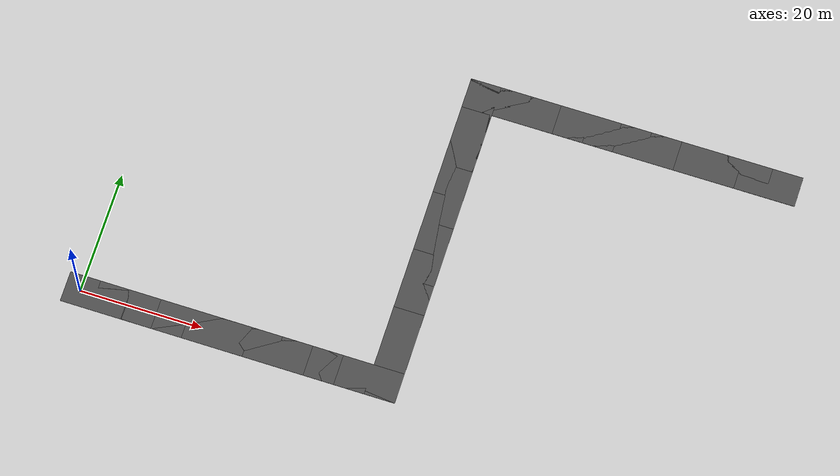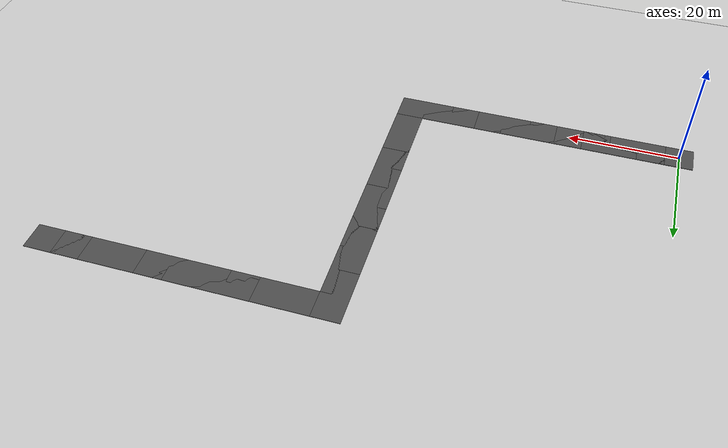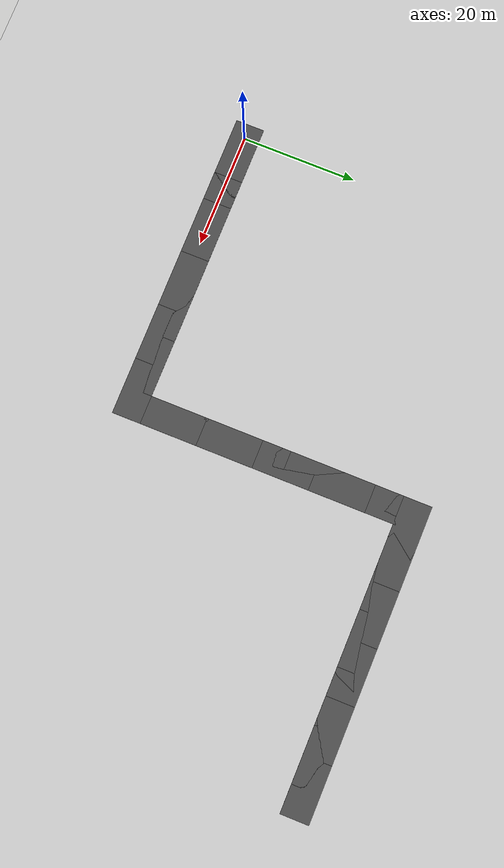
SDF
<?xml version="1.0" ?>
<sdf version="1.6">
  <world name="road_crank_w5">
    <include>
      <uri>model://ground_plane</uri>
    </include>
    <include>
      <uri>model://sun</uri>
    </include>

    <!-- クランク 50m × 5m -->
    <include>
      <uri>model://road_crank_50m_w5</uri>
    </include>

  </world>
</sdf>

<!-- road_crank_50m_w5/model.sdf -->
<sdf version="1.6">
  <model name="road_crank_50m_w5">
    <static>true</static>

    <link name="panel_000">
      <pose>2.500 0.000 0.050 0 0 0.000000</pose>
      <collision name="panel_000_collision">
        <geometry>
          <box>
            <size>10.000 5.000 0.100</size>
          </box>
        </geometry>
        <surface>
          <friction>
            <ode>
              <mu>1.0</mu>
              <mu2>1.0</mu2>
            </ode>
          </friction>
        </surface>
      </collision>
      <visual name="panel_000_visual">
        <geometry>
          <box>
            <size>10.000 5.000 0.100</size>
          </box>
        </geometry>
        <material>
          <ambient>0.2 0.2 0.2 1</ambient>
          <diffuse>0.3 0.3 0.3 1</diffuse>
        </material>
      </visual>
    </link>

    <link name="panel_001">
      <pose>7.500 0.000 0.050 0 0 0.000000</pose>
      <collision name="panel_001_collision">
        <geometry>
          <box>
            <size>10.000 5.000 0.100</size>
          </box>
        </geometry>
        <surface>
          <friction>
            <ode>
              <mu>1.0</mu>
              <mu2>1.0</mu2>
            </ode>
          </friction>
        </surface>
      </collision>
      <visual name="panel_001_visual">
        <geometry>
          <box>
            <size>10.000 5.000 0.100</size>
          </box>
        </geometry>
        <material>
          <ambient>0.2 0.2 0.2 1</ambient>
          <diffuse>0.3 0.3 0.3 1</diffuse>
        </material>
      </visual>
    </link>

    <link name="panel_002">
      <pose>12.500 0.000 0.050 0 0 0.000000</pose>
      <collision name="panel_002_collision">
        <geometry>
          <box>
            <size>10.000 5.000 0.100</size>
          </box>
        </geometry>
        <surface>
          <friction>
            <ode>
              <mu>1.0</mu>
              <mu2>1.0</mu2>
            </ode>
          </friction>
        </surface>
      </collision>
      <visual name="panel_002_visual">
        <geometry>
          <box>
            <size>10.000 5.000 0.100</size>
          </box>
        </geometry>
        <material>
          <ambient>0.2 0.2 0.2 1</ambient>
          <diffuse>0.3 0.3 0.3 1</diffuse>
        </material>
      </visual>
    </link>

    <link name="panel_003">
      <pose>17.500 0.000 0.050 0 0 0.000000</pose>
      <collision name="panel_003_collision">
        <geometry>
          <box>
            <size>10.000 5.000 0.100</size>
          </box>
        </geometry>
        <surface>
          <friction>
            <ode>
              <mu>1.0</mu>
              <mu2>1.0</mu2>
            </ode>
          </friction>
        </surface>
      </collision>
      <visual name="panel_003_visual">
        <geometry>
          <box>
            <size>10.000 5.000 0.100</size>
          </box>
        </geometry>
        <material>
          <ambient>0.2 0.2 0.2 1</ambient>
          <diffuse>0.3 0.3 0.3 1</diffuse>
        </material>
      </visual>
    </link>

    <link name="panel_004">
      <pose>22.500 0.000 0.050 0 0 0.000000</pose>
      <collision name="panel_004_collision">
        <geometry>
          <box>
            <size>10.000 5.000 0.100</size>
          </box>
        </geometry>
        <surface>
          <friction>
            <ode>
              <mu>1.0</mu>
              <mu2>1.0</mu2>
            </ode>
          </friction>
        </surface>
      </collision>
      <visual name="panel_004_visual">
        <geometry>
          <box>
            <size>10.000 5.000 0.100</size>
          </box>
        </geometry>
        <material>
          <ambient>0.2 0.2 0.2 1</ambient>
          <diffuse>0.3 0.3 0.3 1</diffuse>
        </material>
      </visual>
    </link>

    <link name="panel_005">
      <pose>27.500 0.000 0.050 0 0 0.000000</pose>
      <collision name="panel_005_collision">
        <geometry>
          <box>
            <size>10.000 5.000 0.100</size>
          </box>
        </geometry>
        <surface>
          <friction>
            <ode>
              <mu>1.0</mu>
              <mu2>1.0</mu2>
            </ode>
          </friction>
        </surface>
      </collision>
      <visual name="panel_005_visual">
        <geometry>
          <box>
            <size>10.000 5.000 0.100</size>
          </box>
        </geometry>
        <material>
          <ambient>0.2 0.2 0.2 1</ambient>
          <diffuse>0.3 0.3 0.3 1</diffuse>
        </material>
      </visual>
    </link>

    <link name="panel_006">
      <pose>32.500 0.000 0.050 0 0 0.000000</pose>
      <collision name="panel_006_collision">
        <geometry>
          <box>
            <size>10.000 5.000 0.100</size>
          </box>
        </geometry>
        <surface>
          <friction>
            <ode>
              <mu>1.0</mu>
              <mu2>1.0</mu2>
            </ode>
          </friction>
        </surface>
      </collision>
      <visual name="panel_006_visual">
        <geometry>
          <box>
            <size>10.000 5.000 0.100</size>
          </box>
        </geometry>
        <material>
          <ambient>0.2 0.2 0.2 1</ambient>
          <diffuse>0.3 0.3 0.3 1</diffuse>
        </material>
      </visual>
    </link>

    <link name="panel_007">
      <pose>37.500 0.000 0.050 0 0 0.000000</pose>
      <collision name="panel_007_collision">
        <geometry>
          <box>
            <size>10.000 5.000 0.100</size>
          </box>
        </geometry>
        <surface>
          <friction>
            <ode>
              <mu>1.0</mu>
              <mu2>1.0</mu2>
            </ode>
          </friction>
        </surface>
      </collision>
      <visual name="panel_007_visual">
        <geometry>
          <box>
            <size>10.000 5.000 0.100</size>
          </box>
        </geometry>
        <material>
          <ambient>0.2 0.2 0.2 1</ambient>
          <diffuse>0.3 0.3 0.3 1</diffuse>
        </material>
      </visual>
    </link>

    <link name="panel_008">
      <pose>42.500 0.000 0.050 0 0 0.000000</pose>
      <collision name="panel_008_collision">
        <geometry>
          <box>
            <size>10.000 5.000 0.100</size>
          </box>
        </geometry>
        <surface>
          <friction>
            <ode>
              <mu>1.0</mu>
              <mu2>1.0</mu2>
            </ode>
          </friction>
        </surface>
      </collision>
      <visual name="panel_008_visual">
        <geometry>
          <box>
            <size>10.000 5.000 0.100</size>
          </box>
        </geometry>
        <material>
          <ambient>0.2 0.2 0.2 1</ambient>
          <diffuse>0.3 0.3 0.3 1</diffuse>
        </material>
      </visual>
    </link>

    <link name="panel_009">
      <pose>47.500 0.000 0.050 0 0 0.000000</pose>
      <collision name="panel_009_collision">
        <geometry>
          <box>
            <size>10.000 5.000 0.100</size>
          </box>
        </geometry>
        <surface>
          <friction>
            <ode>
              <mu>1.0</mu>
              <mu2>1.0</mu2>
            </ode>
          </friction>
        </surface>
      </collision>
      <visual name="panel_009_visual">
        <geometry>
          <box>
            <size>10.000 5.000 0.100</size>
          </box>
        </geometry>
        <material>
          <ambient>0.2 0.2 0.2 1</ambient>
          <diffuse>0.3 0.3 0.3 1</diffuse>
        </material>
      </visual>
    </link>

    <link name="panel_010">
      <pose>50.000 2.500 0.050 0 0 1.570796</pose>
      <collision name="panel_010_collision">
        <geometry>
          <box>
            <size>10.000 5.000 0.100</size>
          </box>
        </geometry>
        <surface>
          <friction>
            <ode>
              <mu>1.0</mu>
              <mu2>1.0</mu2>
            </ode>
          </friction>
        </surface>
      </collision>
      <visual name="panel_010_visual">
        <geometry>
          <box>
            <size>10.000 5.000 0.100</size>
          </box>
        </geometry>
        <material>
          <ambient>0.2 0.2 0.2 1</ambient>
          <diffuse>0.3 0.3 0.3 1</diffuse>
        </material>
      </visual>
    </link>

    <link name="panel_011">
      <pose>50.000 7.500 0.050 0 0 1.570796</pose>
      <collision name="panel_011_collision">
        <geometry>
          <box>
            <size>10.000 5.000 0.100</size>
          </box>
        </geometry>
        <surface>
          <friction>
            <ode>
              <mu>1.0</mu>
              <mu2>1.0</mu2>
            </ode>
          </friction>
        </surface>
      </collision>
      <visual name="panel_011_visual">
        <geometry>
          <box>
            <size>10.000 5.000 0.100</size>
          </box>
        </geometry>
        <material>
          <ambient>0.2 0.2 0.2 1</ambient>
          <diffuse>0.3 0.3 0.3 1</diffuse>
        </material>
      </visual>
    </link>

    <link name="panel_012">
      <pose>50.000 12.500 0.050 0 0 1.570796</pose>
      <collision name="panel_012_collision">
        <geometry>
          <box>
            <size>10.000 5.000 0.100</size>
          </box>
        </geometry>
        <surface>
          <friction>
            <ode>
              <mu>1.0</mu>
              <mu2>1.0</mu2>
            </ode>
          </friction>
        </surface>
      </collision>
      <visual name="panel_012_visual">
        <geometry>
          <box>
            <size>10.000 5.000 0.100</size>
          </box>
        </geometry>
        <material>
          <ambient>0.2 0.2 0.2 1</ambient>
          <diffuse>0.3 0.3 0.3 1</diffuse>
        </material>
      </visual>
    </link>

    <link name="panel_013">
      <pose>50.000 17.500 0.050 0 0 1.570796</pose>
      <collision name="panel_013_collision">
        <geometry>
          <box>
            <size>10.000 5.000 0.100</size>
          </box>
        </geometry>
        <surface>
          <friction>
            <ode>
              <mu>1.0</mu>
              <mu2>1.0</mu2>
            </ode>
          </friction>
        </surface>
      </collision>
      <visual name="panel_013_visual">
        <geometry>
          <box>
            <size>10.000 5.000 0.100</size>
          </box>
        </geometry>
        <material>
          <ambient>0.2 0.2 0.2 1</ambient>
          <diffuse>0.3 0.3 0.3 1</diffuse>
        </material>
      </visual>
    </link>

    <link name="panel_014">
      <pose>50.000 22.500 0.050 0 0 1.570796</pose>
      <collision name="panel_014_collision">
        <geometry>
          <box>
            <size>10.000 5.000 0.100</size>
          </box>
        </geometry>
        <surface>
          <friction>
            <ode>
              <mu>1.0</mu>
              <mu2>1.0</mu2>
            </ode>
          </friction>
        </surface>
      </collision>
      <visual name="panel_014_visual">
        <geometry>
          <box>
            <size>10.000 5.000 0.100</size>
          </box>
        </geometry>
        <material>
          <ambient>0.2 0.2 0.2 1</ambient>
          <diffuse>0.3 0.3 0.3 1</diffuse>
        </material>
      </visual>
    </link>

    <link name="panel_015">
      <pose>50.000 27.500 0.050 0 0 1.570796</pose>
      <collision name="panel_015_collision">
        <geometry>
          <box>
            <size>10.000 5.000 0.100</size>
          </box>
        </geometry>
        <surface>
          <friction>
            <ode>
              <mu>1.0</mu>
              <mu2>1.0</mu2>
            </ode>
          </friction>
        </surface>
      </collision>
      <visual name="panel_015_visual">
        <geometry>
          <box>
            <size>10.000 5.000 0.100</size>
          </box>
        </geometry>
        <material>
          <ambient>0.2 0.2 0.2 1</ambient>
          <diffuse>0.3 0.3 0.3 1</diffuse>
        </material>
      </visual>
    </link>

    <link name="panel_016">
      <pose>50.000 32.500 0.050 0 0 1.570796</pose>
      <collision name="panel_016_collision">
        <geometry>
          <box>
            <size>10.000 5.000 0.100</size>
          </box>
        </geometry>
        <surface>
          <friction>
            <ode>
              <mu>1.0</mu>
              <mu2>1.0</mu2>
            </ode>
          </friction>
        </surface>
      </collision>
      <visual name="panel_016_visual">
        <geometry>
          <box>
            <size>10.000 5.000 0.100</size>
          </box>
        </geometry>
        <material>
          <ambient>0.2 0.2 0.2 1</ambient>
          <diffuse>0.3 0.3 0.3 1</diffuse>
        </material>
      </visual>
    </link>

    <link name="panel_017">
      <pose>50.000 37.500 0.050 0 0 1.570796</pose>
      <collision name="panel_017_collision">
        <geometry>
          <box>
            <size>10.000 5.000 0.100</size>
          </box>
        </geometry>
        <surface>
          <friction>
            <ode>
              <mu>1.0</mu>
              <mu2>1.0</mu2>
            </ode>
          </friction>
        </surface>
      </collision>
      <visual name="panel_017_visual">
        <geometry>
          <box>
            <size>10.000 5.000 0.100</size>
          </box>
        </geometry>
        <material>
          <ambient>0.2 0.2 0.2 1</ambient>
          <diffuse>0.3 0.3 0.3 1</diffuse>
        </material>
      </visual>
    </link>

    <link name="panel_018">
      <pose>50.000 42.500 0.050 0 0 1.570796</pose>
      <collision name="panel_018_collision">
        <geometry>
          <box>
            <size>10.000 5.000 0.100</size>
          </box>
        </geometry>
        <surface>
          <friction>
            <ode>
              <mu>1.0</mu>
              <mu2>1.0</mu2>
            </ode>
          </friction>
        </surface>
      </collision>
      <visual name="panel_018_visual">
        <geometry>
          <box>
            <size>10.000 5.000 0.100</size>
          </box>
        </geometry>
        <material>
          <ambient>0.2 0.2 0.2 1</ambient>
          <diffuse>0.3 0.3 0.3 1</diffuse>
        </material>
      </visual>
    </link>

    <link name="panel_019">
      <pose>50.000 47.500 0.050 0 0 1.570796</pose>
      <collision name="panel_019_collision">
        <geometry>
          <box>
            <size>10.000 5.000 0.100</size>
          </box>
        </geometry>
        <surface>
          <friction>
            <ode>
              <mu>1.0</mu>
              <mu2>1.0</mu2>
            </ode>
          </friction>
        </surface>
      </collision>
      <visual name="panel_019_visual">
        <geometry>
          <box>
            <size>10.000 5.000 0.100</size>
          </box>
        </geometry>
        <material>
          <ambient>0.2 0.2 0.2 1</ambient>
          <diffuse>0.3 0.3 0.3 1</diffuse>
        </material>
      </visual>
    </link>

    <link name="panel_020">
      <pose>52.500 50.000 0.050 0 0 0.000000</pose>
      <collision name="panel_020_collision">
        <geometry>
          <box>
            <size>10.000 5.000 0.100</size>
          </box>
        </geometry>
        <surface>
          <friction>
            <ode>
              <mu>1.0</mu>
              <mu2>1.0</mu2>
            </ode>
          </friction>
        </surface>
      </collision>
      <visual name="panel_020_visual">
        <geometry>
          <box>
            <size>10.000 5.000 0.100</size>
          </box>
        </geometry>
        <material>
          <ambient>0.2 0.2 0.2 1</ambient>
          <diffuse>0.3 0.3 0.3 1</diffuse>
        </material>
      </visual>
    </link>

    <link name="panel_021">
      <pose>57.500 50.000 0.050 0 0 0.000000</pose>
      <collision name="panel_021_collision">
        <geometry>
          <box>
            <size>10.000 5.000 0.100</size>
          </box>
        </geometry>
        <surface>
          <friction>
            <ode>
              <mu>1.0</mu>
              <mu2>1.0</mu2>
            </ode>
          </friction>
        </surface>
      </collision>
      <visual name="panel_021_visual">
        <geometry>
          <box>
            <size>10.000 5.000 0.100</size>
          </box>
        </geometry>
        <material>
          <ambient>0.2 0.2 0.2 1</ambient>
          <diffuse>0.3 0.3 0.3 1</diffuse>
        </material>
      </visual>
    </link>

    <link name="panel_022">
      <pose>62.500 50.000 0.050 0 0 0.000000</pose>
      <collision name="panel_022_collision">
        <geometry>
          <box>
            <size>10.000 5.000 0.100</size>
          </box>
        </geometry>
        <surface>
          <friction>
            <ode>
              <mu>1.0</mu>
              <mu2>1.0</mu2>
            </ode>
          </friction>
        </surface>
      </collision>
      <visual name="panel_022_visual">
        <geometry>
          <box>
            <size>10.000 5.000 0.100</size>
          </box>
        </geometry>
        <material>
          <ambient>0.2 0.2 0.2 1</ambient>
          <diffuse>0.3 0.3 0.3 1</diffuse>
        </material>
      </visual>
    </link>

    <link name="panel_023">
      <pose>67.500 50.000 0.050 0 0 0.000000</pose>
      <collision name="panel_023_collision">
        <geometry>
          <box>
            <size>10.000 5.000 0.100</size>
          </box>
        </geometry>
        <surface>
          <friction>
            <ode>
              <mu>1.0</mu>
              <mu2>1.0</mu2>
            </ode>
          </friction>
        </surface>
      </collision>
      <visual name="panel_023_visual">
        <geometry>
          <box>
            <size>10.000 5.000 0.100</size>
          </box>
        </geometry>
        <material>
          <ambient>0.2 0.2 0.2 1</ambient>
          <diffuse>0.3 0.3 0.3 1</diffuse>
        </material>
      </visual>
    </link>

    <link name="panel_024">
      <pose>72.500 50.000 0.050 0 0 0.000000</pose>
      <collision name="panel_024_collision">
        <geometry>
          <box>
            <size>10.000 5.000 0.100</size>
          </box>
        </geometry>
        <surface>
          <friction>
            <ode>
              <mu>1.0</mu>
              <mu2>1.0</mu2>
            </ode>
          </friction>
        </surface>
      </collision>
      <visual name="panel_024_visual">
        <geometry>
          <box>
            <size>10.000 5.000 0.100</size>
          </box>
        </geometry>
        <material>
          <ambient>0.2 0.2 0.2 1</ambient>
          <diffuse>0.3 0.3 0.3 1</diffuse>
        </material>
      </visual>
    </link>

    <link name="panel_025">
      <pose>77.500 50.000 0.050 0 0 0.000000</pose>
      <collision name="panel_025_collision">
        <geometry>
          <box>
            <size>10.000 5.000 0.100</size>
          </box>
        </geometry>
        <surface>
          <friction>
            <ode>
              <mu>1.0</mu>
              <mu2>1.0</mu2>
            </ode>
          </friction>
        </surface>
      </collision>
      <visual name="panel_025_visual">
        <geometry>
          <box>
            <size>10.000 5.000 0.100</size>
          </box>
        </geometry>
        <material>
          <ambient>0.2 0.2 0.2 1</ambient>
          <diffuse>0.3 0.3 0.3 1</diffuse>
        </material>
      </visual>
    </link>

    <link name="panel_026">
      <pose>82.500 50.000 0.050 0 0 0.000000</pose>
      <collision name="panel_026_collision">
        <geometry>
          <box>
            <size>10.000 5.000 0.100</size>
          </box>
        </geometry>
        <surface>
          <friction>
            <ode>
              <mu>1.0</mu>
              <mu2>1.0</mu2>
            </ode>
          </friction>
        </surface>
      </collision>
      <visual name="panel_026_visual">
        <geometry>
          <box>
            <size>10.000 5.000 0.100</size>
          </box>
        </geometry>
        <material>
          <ambient>0.2 0.2 0.2 1</ambient>
          <diffuse>0.3 0.3 0.3 1</diffuse>
        </material>
      </visual>
    </link>

    <link name="panel_027">
      <pose>87.500 50.000 0.050 0 0 0.000000</pose>
      <collision name="panel_027_collision">
        <geometry>
          <box>
            <size>10.000 5.000 0.100</size>
          </box>
        </geometry>
        <surface>
          <friction>
            <ode>
              <mu>1.0</mu>
              <mu2>1.0</mu2>
            </ode>
          </friction>
        </surface>
      </collision>
      <visual name="panel_027_visual">
        <geometry>
          <box>
            <size>10.000 5.000 0.100</size>
          </box>
        </geometry>
        <material>
          <ambient>0.2 0.2 0.2 1</ambient>
          <diffuse>0.3 0.3 0.3 1</diffuse>
        </material>
      </visual>
    </link>

    <link name="panel_028">
      <pose>92.500 50.000 0.050 0 0 0.000000</pose>
      <collision name="panel_028_collision">
        <geometry>
          <box>
            <size>10.000 5.000 0.100</size>
          </box>
        </geometry>
        <surface>
          <friction>
            <ode>
              <mu>1.0</mu>
              <mu2>1.0</mu2>
            </ode>
          </friction>
        </surface>
      </collision>
      <visual name="panel_028_visual">
        <geometry>
          <box>
            <size>10.000 5.000 0.100</size>
          </box>
        </geometry>
        <material>
          <ambient>0.2 0.2 0.2 1</ambient>
          <diffuse>0.3 0.3 0.3 1</diffuse>
        </material>
      </visual>
    </link>

    <link name="panel_029">
      <pose>97.500 50.000 0.050 0 0 0.000000</pose>
      <collision name="panel_029_collision">
        <geometry>
          <box>
            <size>10.000 5.000 0.100</size>
          </box>
        </geometry>
        <surface>
          <friction>
            <ode>
              <mu>1.0</mu>
              <mu2>1.0</mu2>
            </ode>
          </friction>
        </surface>
      </collision>
      <visual name="panel_029_visual">
        <geometry>
          <box>
            <size>10.000 5.000 0.100</size>
          </box>
        </geometry>
        <material>
          <ambient>0.2 0.2 0.2 1</ambient>
          <diffuse>0.3 0.3 0.3 1</diffuse>
        </material>
      </visual>
    </link>

  </model>
</sdf>
